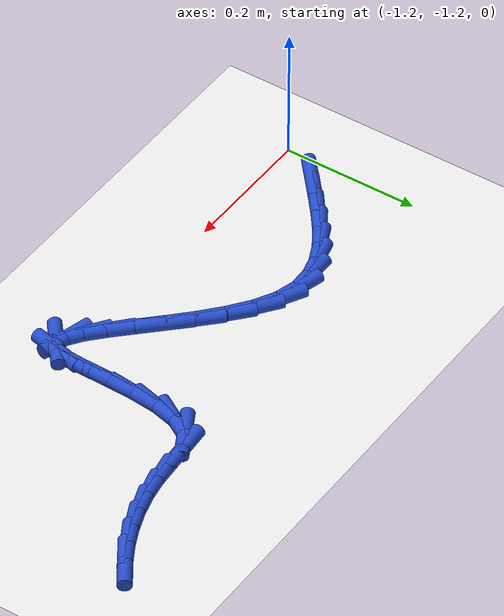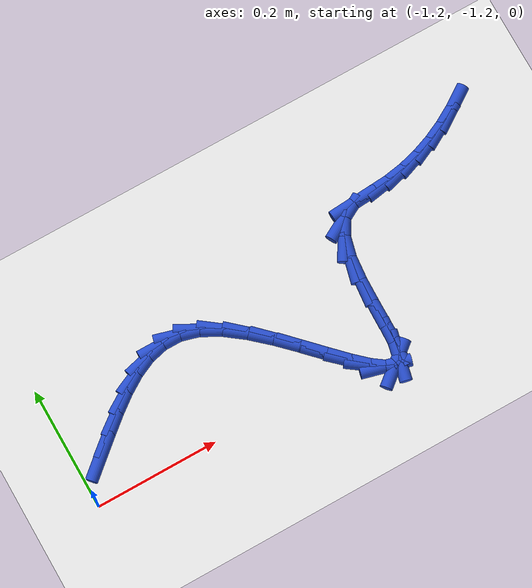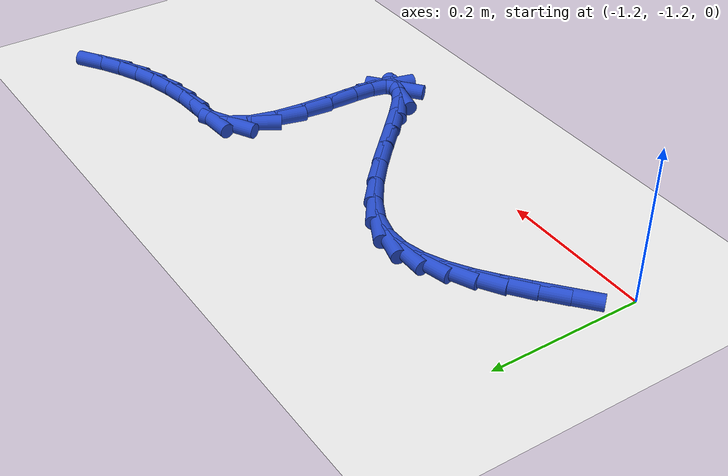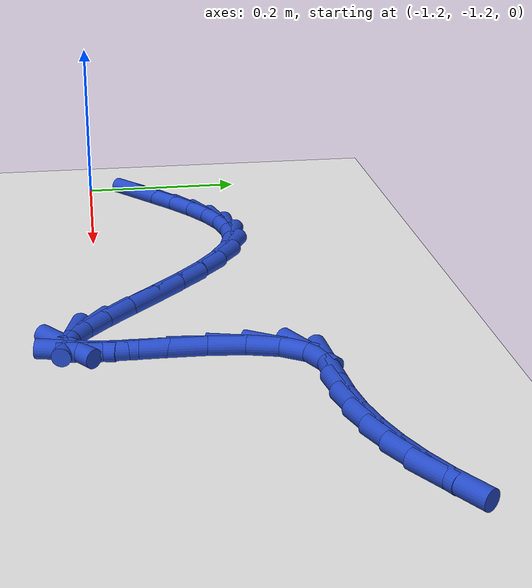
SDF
<sdf version="1.6">
 <world name="default">
  <model name="ground_plane">
   <static>1</static>
   <link name="link">
    <collision name="collision">
     <geometry><plane><normal>0 0 1</normal><size>100 100</size></plane></geometry>
     <surface><friction><ode><mu>100</mu><mu2>50</mu2></ode></friction></surface>
    </collision>
    <visual name="visual">
     <cast_shadows>0</cast_shadows>
     <geometry><plane><normal>0 0 1</normal><size>100 100</size></plane></geometry>
     <material>
      <script><uri>file://media/materials/scripts/gazebo.material</uri><name>Gazebo/WhiteGlow</name></script>
     </material>
    </visual>
   </link>
  </model>
  <model name="line">
   <link name="link_204">
    <pose>-1.1611121922997663 -1.1359673127954208 0.01 0 1.57 0.7127374853955356</pose>
    <collision name="collision">
     <geometry><cylinder><radius>0.01</radius><length>0.08</length></cylinder></geometry>
    </collision>
    <visual name="visual">
     <material>
      <script><name>Gazebo/Blue</name><uri>file://media/materials/scripts/gazebo.material</uri></script>
     </material>
     <geometry><cylinder><radius>0.01</radius><length>0.08</length></cylinder></geometry>
    </visual>
   </link>
   <link name="link_205">
    <pose>-1.1341564244238906 -1.112669447625151 0.01 0 1.57 0.6992972812053618</pose>
    <collision name="collision">
     <geometry><cylinder><radius>0.01</radius><length>0.08</length></cylinder></geometry>
    </collision>
    <visual name="visual">
     <material>
      <script><name>Gazebo/Blue</name><uri>file://media/materials/scripts/gazebo.material</uri></script>
     </material>
     <geometry><cylinder><radius>0.01</radius><length>0.08</length></cylinder></geometry>
    </visual>
   </link>
   <link name="link_206">
    <pose>-1.1073642182868777 -1.0901348491468263 0.01 0 1.57 0.6532033002282683</pose>
    <collision name="collision">
     <geometry><cylinder><radius>0.01</radius><length>0.08</length></cylinder></geometry>
    </collision>
    <visual name="visual">
     <material>
      <script><name>Gazebo/Blue</name><uri>file://media/materials/scripts/gazebo.material</uri></script>
     </material>
     <geometry><cylinder><radius>0.01</radius><length>0.08</length></cylinder></geometry>
    </visual>
   </link>
   <link name="link_207">
    <pose>-1.08054654413949 -1.069612053407656 0.01 0 1.57 0.5683118016476363</pose>
    <collision name="collision">
     <geometry><cylinder><radius>0.01</radius><length>0.08</length></cylinder></geometry>
    </collision>
    <visual name="visual">
     <material>
      <script><name>Gazebo/Blue</name><uri>file://media/materials/scripts/gazebo.material</uri></script>
     </material>
     <geometry><cylinder><radius>0.01</radius><length>0.08</length></cylinder></geometry>
    </visual>
   </link>
   <link name="link_208">
    <pose>-1.0535143722324944 -1.052349596454854 0.01 0 1.57 0.4351372480166643</pose>
    <collision name="collision">
     <geometry><cylinder><radius>0.01</radius><length>0.08</length></cylinder></geometry>
    </collision>
    <visual name="visual">
     <material>
      <script><name>Gazebo/Blue</name><uri>file://media/materials/scripts/gazebo.material</uri></script>
     </material>
     <geometry><cylinder><radius>0.01</radius><length>0.08</length></cylinder></geometry>
    </visual>
   </link>
   <link name="link_209">
    <pose>-1.0260786728166547 -1.0395960143356295 0.01 0 1.57 0.24461284991514168</pose>
    <collision name="collision">
     <geometry><cylinder><radius>0.01</radius><length>0.08</length></cylinder></geometry>
    </collision>
    <visual name="visual">
     <material>
      <script><name>Gazebo/Blue</name><uri>file://media/materials/scripts/gazebo.material</uri></script>
     </material>
     <geometry><cylinder><radius>0.01</radius><length>0.08</length></cylinder></geometry>
    </visual>
   </link>
   <link name="link_210">
    <pose>-0.9980504161427372 -1.0325998430971965 0.01 0 1.57 -0.00033931767561958784</pose>
    <collision name="collision">
     <geometry><cylinder><radius>0.01</radius><length>0.08</length></cylinder></geometry>
    </collision>
    <visual name="visual">
     <material>
      <script><name>Gazebo/Blue</name><uri>file://media/materials/scripts/gazebo.material</uri></script>
     </material>
     <geometry><cylinder><radius>0.01</radius><length>0.08</length></cylinder></geometry>
    </visual>
   </link>
   <link name="link_211">
    <pose>-0.9692405724615047 -1.0326096187867646 0.01 0 1.57 -0.2705239037170206</pose>
    <collision name="collision">
     <geometry><cylinder><radius>0.01</radius><length>0.08</length></cylinder></geometry>
    </collision>
    <visual name="visual">
     <material>
      <script><name>Gazebo/Blue</name><uri>file://media/materials/scripts/gazebo.material</uri></script>
     </material>
     <geometry><cylinder><radius>0.01</radius><length>0.08</length></cylinder></geometry>
    </visual>
   </link>
   <link name="link_212">
    <pose>-0.9394615123835656 -1.0408680147267957 0.01 0 1.57 -0.4986909144194393</pose>
    <collision name="collision">
     <geometry><cylinder><radius>0.01</radius><length>0.08</length></cylinder></geometry>
    </collision>
    <visual name="visual">
     <material>
      <script><name>Gazebo/Blue</name><uri>file://media/materials/scripts/gazebo.material</uri></script>
     </material>
     <geometry><cylinder><radius>0.01</radius><length>0.08</length></cylinder></geometry>
    </visual>
   </link>
   <link name="link_213">
    <pose>-0.9087732392873749 -1.05758096874143 0.01 0 1.57 -0.6414064853445725</pose>
    <collision name="collision">
     <geometry><cylinder><radius>0.01</radius><length>0.08</length></cylinder></geometry>
    </collision>
    <visual name="visual">
     <material>
      <script><name>Gazebo/Blue</name><uri>file://media/materials/scripts/gazebo.material</uri></script>
     </material>
     <geometry><cylinder><radius>0.01</radius><length>0.08</length></cylinder></geometry>
    </visual>
   </link>
   <link name="link_214">
    <pose>-0.8777658355900125 -1.0807351979877624 0.01 0 1.57 -0.7272878932158371</pose>
    <collision name="collision">
     <geometry><cylinder><radius>0.01</radius><length>0.08</length></cylinder></geometry>
    </collision>
    <visual name="visual">
     <material>
      <script><name>Gazebo/Blue</name><uri>file://media/materials/scripts/gazebo.material</uri></script>
     </material>
     <geometry><cylinder><radius>0.01</radius><length>0.08</length></cylinder></geometry>
    </visual>
   </link>
   <link name="link_215">
    <pose>-0.8470977557301319 -1.1080311743796796 0.01 0 1.57 -0.7763502938037518</pose>
    <collision name="collision">
     <geometry><cylinder><radius>0.01</radius><length>0.08</length></cylinder></geometry>
    </collision>
    <visual name="visual">
     <material>
      <script><name>Gazebo/Blue</name><uri>file://media/materials/scripts/gazebo.material</uri></script>
     </material>
     <geometry><cylinder><radius>0.01</radius><length>0.08</length></cylinder></geometry>
    </visual>
   </link>
   <link name="link_216">
    <pose>-0.8174274541463872 -1.1371693698310676 0.01 0 1.57 -0.797159118270868</pose>
    <collision name="collision">
     <geometry><cylinder><radius>0.01</radius><length>0.08</length></cylinder></geometry>
    </collision>
    <visual name="visual">
     <material>
      <script><name>Gazebo/Blue</name><uri>file://media/materials/scripts/gazebo.material</uri></script>
     </material>
     <geometry><cylinder><radius>0.01</radius><length>0.08</length></cylinder></geometry>
    </visual>
   </link>
   <link name="link_217">
    <pose>-0.7894133852774345 -1.1658502562558115 0.01 0 1.57 -0.7897501828893496</pose>
    <collision name="collision">
     <geometry><cylinder><radius>0.01</radius><length>0.08</length></cylinder></geometry>
    </collision>
    <visual name="visual">
     <material>
      <script><name>Gazebo/Blue</name><uri>file://media/materials/scripts/gazebo.material</uri></script>
     </material>
     <geometry><cylinder><radius>0.01</radius><length>0.08</length></cylinder></geometry>
    </visual>
   </link>
   <link name="link_218">
    <pose>-0.763714003561927 -1.1917743055677983 0.01 0 1.57 -0.7427905929766802</pose>
    <collision name="collision">
     <geometry><cylinder><radius>0.01</radius><length>0.08</length></cylinder></geometry>
    </collision>
    <visual name="visual">
     <material>
      <script><name>Gazebo/Blue</name><uri>file://media/materials/scripts/gazebo.material</uri></script>
     </material>
     <geometry><cylinder><radius>0.01</radius><length>0.08</length></cylinder></geometry>
    </visual>
   </link>
   <link name="link_219">
    <pose>-0.7409877634385211 -1.2126419896809124 0.01 0 1.57 -0.6158231249125548</pose>
    <collision name="collision">
     <geometry><cylinder><radius>0.01</radius><length>0.08</length></cylinder></geometry>
    </collision>
    <visual name="visual">
     <material>
      <script><name>Gazebo/Blue</name><uri>file://media/materials/scripts/gazebo.material</uri></script>
     </material>
     <geometry><cylinder><radius>0.01</radius><length>0.08</length></cylinder></geometry>
    </visual>
   </link>
   <link name="link_220">
    <pose>-0.7218931193458695 -1.2261537805090401 0.01 0 1.57 -0.25482197144992547</pose>
    <collision name="collision">
     <geometry><cylinder><radius>0.01</radius><length>0.08</length></cylinder></geometry>
    </collision>
    <visual name="visual">
     <material>
      <script><name>Gazebo/Blue</name><uri>file://media/materials/scripts/gazebo.material</uri></script>
     </material>
     <geometry><cylinder><radius>0.01</radius><length>0.08</length></cylinder></geometry>
    </visual>
   </link>
   <link name="link_221">
    <pose>-0.7070885257226286 -1.230010149966067 0.01 0 1.57 0.6876263658067333</pose>
    <collision name="collision">
     <geometry><cylinder><radius>0.01</radius><length>0.08</length></cylinder></geometry>
    </collision>
    <visual name="visual">
     <material>
      <script><name>Gazebo/Blue</name><uri>file://media/materials/scripts/gazebo.material</uri></script>
     </material>
     <geometry><cylinder><radius>0.01</radius><length>0.08</length></cylinder></geometry>
    </visual>
   </link>
   <link name="link_222">
    <pose>-0.6972313815551052 -1.2219139511438617 0.01 0 1.57 1.3411102383935123</pose>
    <collision name="collision">
     <geometry><cylinder><radius>0.01</radius><length>0.08</length></cylinder></geometry>
    </collision>
    <visual name="visual">
     <material>
      <script><name>Gazebo/Blue</name><uri>file://media/materials/scripts/gazebo.material</uri></script>
     </material>
     <geometry><cylinder><radius>0.01</radius><length>0.08</length></cylinder></geometry>
    </visual>
   </link>
   <link name="link_223">
    <pose>-0.6923424543681554 -1.2010043244516966 0.01 0 1.57 1.51829697036719</pose>
    <collision name="collision">
     <geometry><cylinder><radius>0.01</radius><length>0.08</length></cylinder></geometry>
    </collision>
    <visual name="visual">
     <material>
      <script><name>Gazebo/Blue</name><uri>file://media/materials/scripts/gazebo.material</uri></script>
     </material>
     <geometry><cylinder><radius>0.01</radius><length>0.08</length></cylinder></geometry>
    </visual>
   </link>
   <link name="link_224">
    <pose>-0.690728365539946 -1.1702876498553676 0.01 0 1.57 1.562166844059481</pose>
    <collision name="collision">
     <geometry><cylinder><radius>0.01</radius><length>0.08</length></cylinder></geometry>
    </collision>
    <visual name="visual">
     <material>
      <script><name>Gazebo/Blue</name><uri>file://media/materials/scripts/gazebo.material</uri></script>
     </material>
     <geometry><cylinder><radius>0.01</radius><length>0.08</length></cylinder></geometry>
    </visual>
   </link>
   <link name="link_225">
    <pose>-0.6904101621551308 -1.1334145838932068 0.01 0 1.57 1.5453751574933032</pose>
    <collision name="collision">
     <geometry><cylinder><radius>0.01</radius><length>0.08</length></cylinder></geometry>
    </collision>
    <visual name="visual">
     <material>
      <script><name>Gazebo/Blue</name><uri>file://media/materials/scripts/gazebo.material</uri></script>
     </material>
     <geometry><cylinder><radius>0.01</radius><length>0.08</length></cylinder></geometry>
    </visual>
   </link>
   <link name="link_226">
    <pose>-0.6894088912983629 -1.094035783103541 0.01 0 1.57 1.4752752101143207</pose>
    <collision name="collision">
     <geometry><cylinder><radius>0.01</radius><length>0.08</length></cylinder></geometry>
    </collision>
    <visual name="visual">
     <material>
      <script><name>Gazebo/Blue</name><uri>file://media/materials/scripts/gazebo.material</uri></script>
     </material>
     <geometry><cylinder><radius>0.01</radius><length>0.08</length></cylinder></geometry>
    </visual>
   </link>
   <link name="link_227">
    <pose>-0.6857456000542959 -1.0558019040246982 0.01 0 1.57 1.3273750788978385</pose>
    <collision name="collision">
     <geometry><cylinder><radius>0.01</radius><length>0.08</length></cylinder></geometry>
    </collision>
    <visual name="visual">
     <material>
      <script><name>Gazebo/Blue</name><uri>file://media/materials/scripts/gazebo.material</uri></script>
     </material>
     <geometry><cylinder><radius>0.01</radius><length>0.08</length></cylinder></geometry>
    </visual>
   </link>
   <link name="link_228">
    <pose>-0.6774413355075833 -1.022363603195009 0.01 0 1.57 1.032469784219284</pose>
    <collision name="collision">
     <geometry><cylinder><radius>0.01</radius><length>0.08</length></cylinder></geometry>
    </collision>
    <visual name="visual">
     <material>
      <script><name>Gazebo/Blue</name><uri>file://media/materials/scripts/gazebo.material</uri></script>
     </material>
     <geometry><cylinder><radius>0.01</radius><length>0.08</length></cylinder></geometry>
    </visual>
   </link>
   <link name="link_229">
    <pose>-0.6625171447428783 -0.9973715371528002 0.01 0 1.57 0.502229256096524</pose>
    <collision name="collision">
     <geometry><cylinder><radius>0.01</radius><length>0.08</length></cylinder></geometry>
    </collision>
    <visual name="visual">
     <material>
      <script><name>Gazebo/Blue</name><uri>file://media/materials/scripts/gazebo.material</uri></script>
     </material>
     <geometry><cylinder><radius>0.01</radius><length>0.08</length></cylinder></geometry>
    </visual>
   </link>
   <link name="link_230">
    <pose>-0.6390049557121219 -0.9844586289785947 0.01 0 1.57 0.06906642072789332</pose>
    <collision name="collision">
     <geometry><cylinder><radius>0.01</radius><length>0.08</length></cylinder></geometry>
    </collision>
    <visual name="visual">
     <material>
      <script><name>Gazebo/Blue</name><uri>file://media/materials/scripts/gazebo.material</uri></script>
     </material>
     <geometry><cylinder><radius>0.01</radius><length>0.08</length></cylinder></geometry>
    </visual>
   </link>
   <link name="link_231">
    <pose>-0.6079714318623317 -0.9823118399611586 0.01 0 1.57 0.07164808074534033</pose>
    <collision name="collision">
     <geometry><cylinder><radius>0.01</radius><length>0.08</length></cylinder></geometry>
    </collision>
    <visual name="visual">
     <material>
      <script><name>Gazebo/Blue</name><uri>file://media/materials/scripts/gazebo.material</uri></script>
     </material>
     <geometry><cylinder><radius>0.01</radius><length>0.08</length></cylinder></geometry>
    </visual>
   </link>
   <link name="link_232">
    <pose>-0.5763309981676038 -0.9800409764963927 0.01 0 1.57 0.16649503590014636</pose>
    <collision name="collision">
     <geometry><cylinder><radius>0.01</radius><length>0.08</length></cylinder></geometry>
    </collision>
    <visual name="visual">
     <material>
      <script><name>Gazebo/Blue</name><uri>file://media/materials/scripts/gazebo.material</uri></script>
     </material>
     <geometry><cylinder><radius>0.01</radius><length>0.08</length></cylinder></geometry>
    </visual>
   </link>
   <link name="link_233">
    <pose>-0.5458554229880346 -0.9749195336754005 0.01 0 1.57 0.2605198569415814</pose>
    <collision name="collision">
     <geometry><cylinder><radius>0.01</radius><length>0.08</length></cylinder></geometry>
    </collision>
    <visual name="visual">
     <material>
      <script><name>Gazebo/Blue</name><uri>file://media/materials/scripts/gazebo.material</uri></script>
     </material>
     <geometry><cylinder><radius>0.01</radius><length>0.08</length></cylinder></geometry>
    </visual>
   </link>
   <link name="link_234">
    <pose>-0.5165125888506692 -0.9670973718707196 0.01 0 1.57 0.35197895599021856</pose>
    <collision name="collision">
     <geometry><cylinder><radius>0.01</radius><length>0.08</length></cylinder></geometry>
    </collision>
    <visual name="visual">
     <material>
      <script><name>Gazebo/Blue</name><uri>file://media/materials/scripts/gazebo.material</uri></script>
     </material>
     <geometry><cylinder><radius>0.01</radius><length>0.08</length></cylinder></geometry>
    </visual>
   </link>
   <link name="link_235">
    <pose>-0.48827016127875833 -0.9567246974757715 0.01 0 1.57 0.439392038209669</pose>
    <collision name="collision">
     <geometry><cylinder><radius>0.01</radius><length>0.08</length></cylinder></geometry>
    </collision>
    <visual name="visual">
     <material>
      <script><name>Gazebo/Blue</name><uri>file://media/materials/scripts/gazebo.material</uri></script>
     </material>
     <geometry><cylinder><radius>0.01</radius><length>0.08</length></cylinder></geometry>
    </visual>
   </link>
   <link name="link_236">
    <pose>-0.4610958057955529 -0.943951716883977 0.01 0 1.57 0.5216437831702232</pose>
    <collision name="collision">
     <geometry><cylinder><radius>0.01</radius><length>0.08</length></cylinder></geometry>
    </collision>
    <visual name="visual">
     <material>
      <script><name>Gazebo/Blue</name><uri>file://media/materials/scripts/gazebo.material</uri></script>
     </material>
     <geometry><cylinder><radius>0.01</radius><length>0.08</length></cylinder></geometry>
    </visual>
   </link>
   <link name="link_237">
    <pose>-0.43495718792430627 -0.9289286364887589 0.01 0 1.57 0.5980202893749553</pose>
    <collision name="collision">
     <geometry><cylinder><radius>0.01</radius><length>0.08</length></cylinder></geometry>
    </collision>
    <visual name="visual">
     <material>
      <script><name>Gazebo/Blue</name><uri>file://media/materials/scripts/gazebo.material</uri></script>
     </material>
     <geometry><cylinder><radius>0.01</radius><length>0.08</length></cylinder></geometry>
    </visual>
   </link>
  </model>
 </world>
</sdf>
